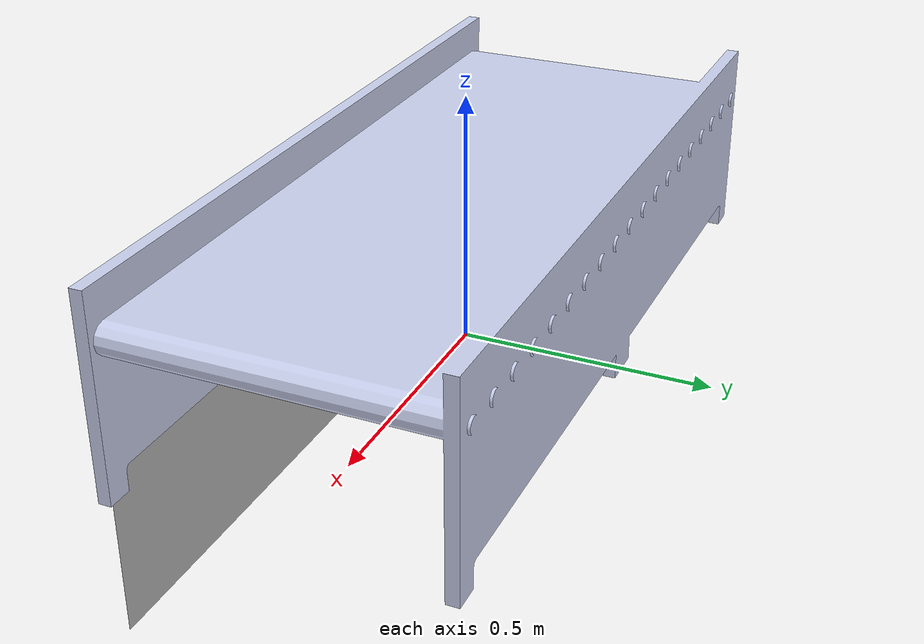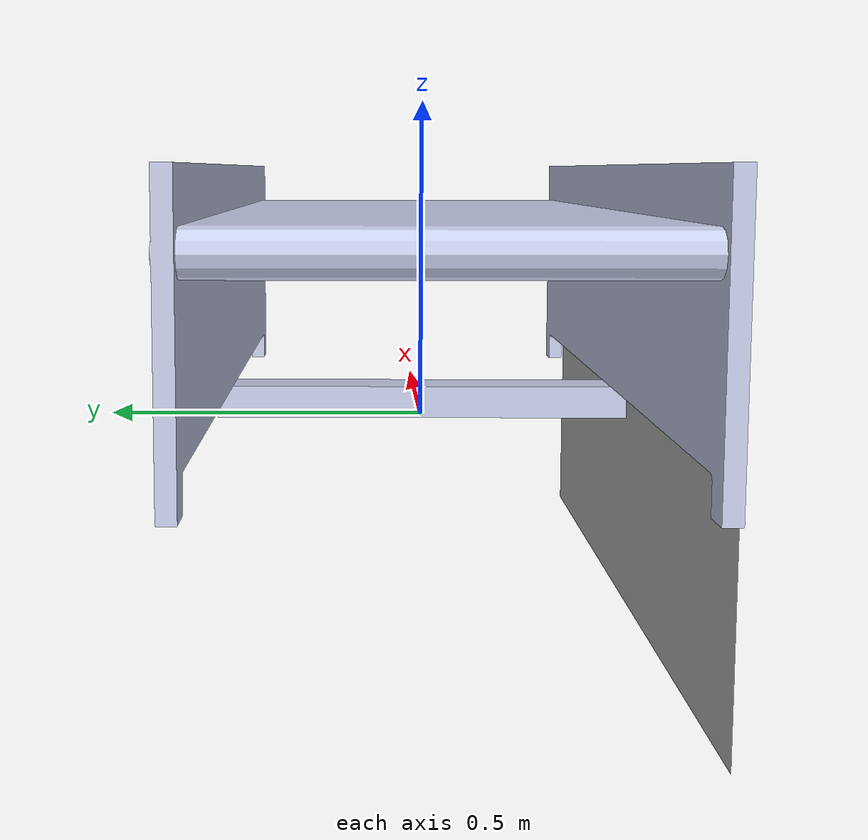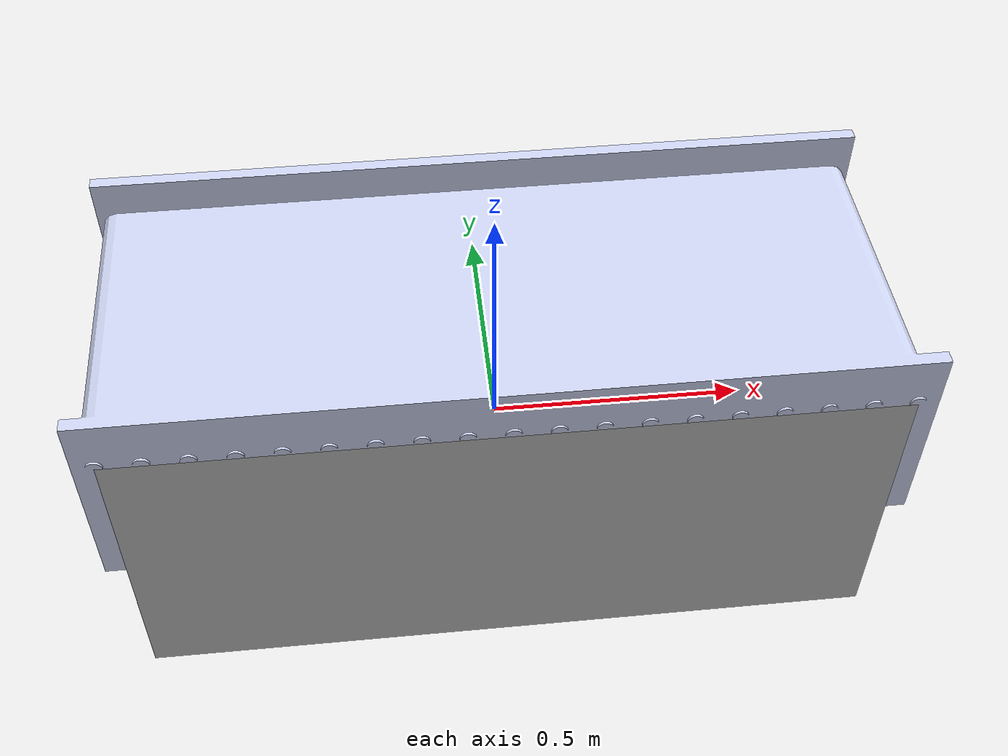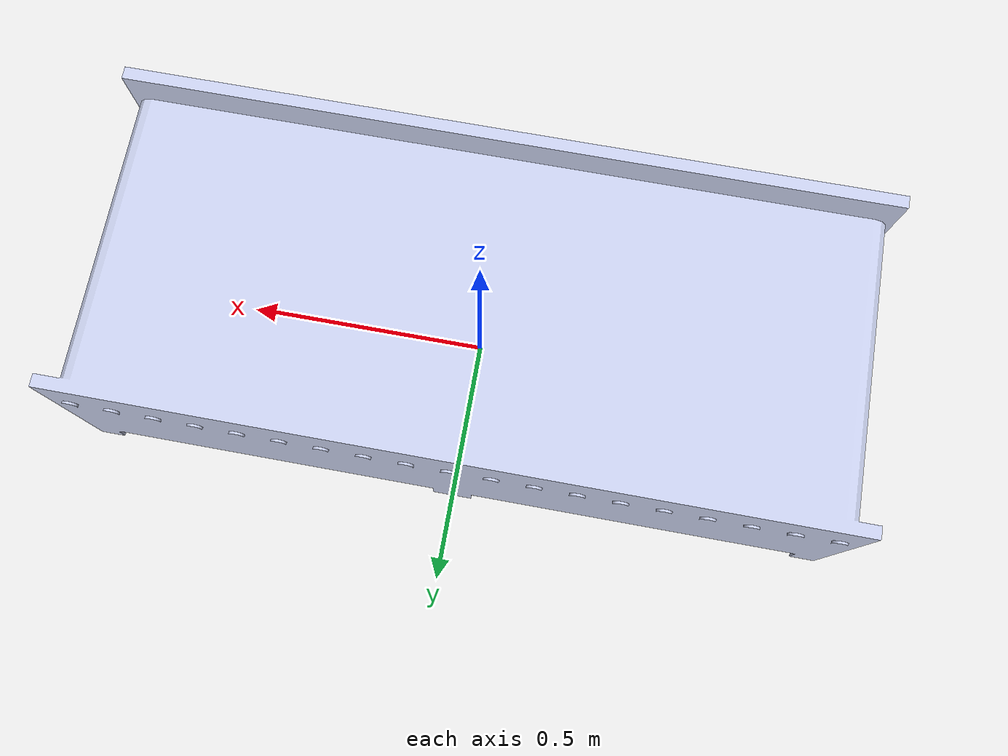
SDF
<?xml version="1.0" ?>

<sdf version="1.6">

    <model name="conveyorbeltt">

        <!-- Fixed part of the conveyor belt -->
        <model name="conveyorbelt_fixed">
            <static>true</static>

            <link name="base_link">
                <inertial>
                    <pose>-1.11651176466313E-18 0.266564075692784 3.94566909880437E-16 1.571 0 0</pose>
                    <mass>83.1229091372459</mass>
                    <inertia>
                        <ixx>4.64074022348345</ixx>
                        <ixy>1.18608232370089E-15</ixy>
                        <ixz>-8.12699324358207E-15</ixz>
                        <iyy>19.2546775470884</iyy>
                        <iyz>-5.65203621587783E-16</iyz>
                        <izz>15.3838944016174</izz>
                    </inertia>
                </inertial>
                <visual name="base_link_visual">
                    <pose>0 0 0 1.571 0 0</pose>
                    <geometry>
                        <mesh>
                            <scale>1 1 1</scale>
                            <uri>model://conveyorbeltt/meshes/base_link.STL</uri>
                        </mesh>
                    </geometry>
                    <material>
                        <ambient>0.792 0.820 0.933 1</ambient>
                        <diffuse>0.792 0.820 0.933 1</diffuse>
                    </material>
                </visual>
                <collision name="base_link_collision">
                    <pose>0 0 0 1.571 0 0</pose>
                    <geometry>
                        <mesh>
                            <scale>1 1 1</scale>
                            <uri>model://conveyorbeltt/meshes/base_link.STL</uri>
                        </mesh>
                    </geometry>
                </collision>
            </link>

        </model>

        <!-- Moving part of the conveyor belt -->
        <model name="conveyorbelt_moving">
            <static>false</static>
            <pose>0 0 0 1.571 0 0</pose>

            <link name="hidden_layer">
                <inertial>
                    <pose>0 0 0 1.571 0 0</pose>
                    <mass>8.64000000024845E-05</mass>
                    <inertia>
                        <ixx>2.59200000007461E-06</ixx>
                        <ixy>2.25151295671931E-38</ixy>
                        <ixz>-2.03185470839285E-21</ixz>
                        <iyy>1.75219200005038E-05</iyy>
                        <iyz>-2.20581496734181E-29</iyz>
                        <izz>1.49299200004294E-05</izz>
                    </inertia>
                </inertial>
                <collision name="hidden_layer_collision">
                    <pose>0 0 0 1.571 0 0</pose>
                    <geometry>
                        <mesh>
                            <uri>model://conveyorbeltt/meshes/hidden_layer.STL</uri>
                        </mesh>
                    </geometry>
                </collision>
                <!-- Hidden visual layer can be disabled if needed -->

                <visual name="hidden_layer_visual">
                    <pose>0 0 0 1.571 0 0</pose>
                    <geometry>
                        <mesh>
                            <uri>model://conveyorbeltt/meshes/hidden_layer.STL</uri>
                        </mesh>
                    </geometry>
                </visual>

            </link>

        </model>

        <!-- Joint between fixed and moving parts -->
        <joint name="belt_joint" type="prismatic">
            <parent>conveyorbelt_fixed::base_link</parent>
            <child>conveyorbelt_moving::hidden_layer</child>
            <axis>
                <xyz>1 0 0</xyz>
                <limit>
                    <lower>0.0</lower>
                    <upper>0.01</upper>
                </limit>
            </axis>
        </joint>

        <!-- Plugin for conveyor belt behavior -->
        <plugin name="ros2_conveyorbelt_plugin" filename="libros2_conveyorbelt_plugin.so">
            <ros>
                <namespace></namespace>
            </ros>
            <max_velocity>1.0</max_velocity>
            <publish_rate>1000</publish_rate>
        </plugin>

    </model>

</sdf>
